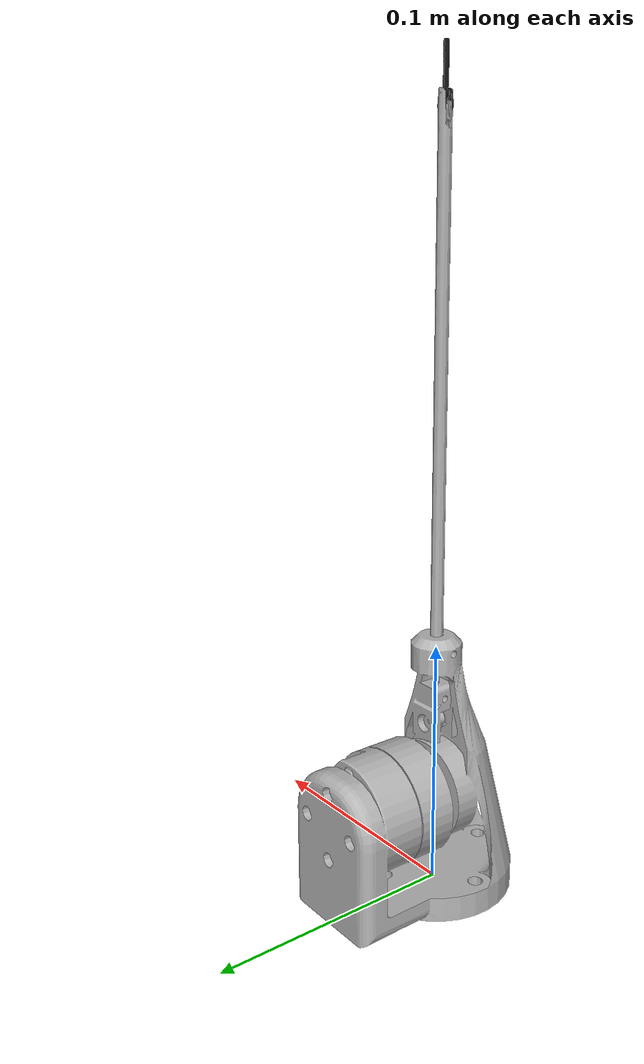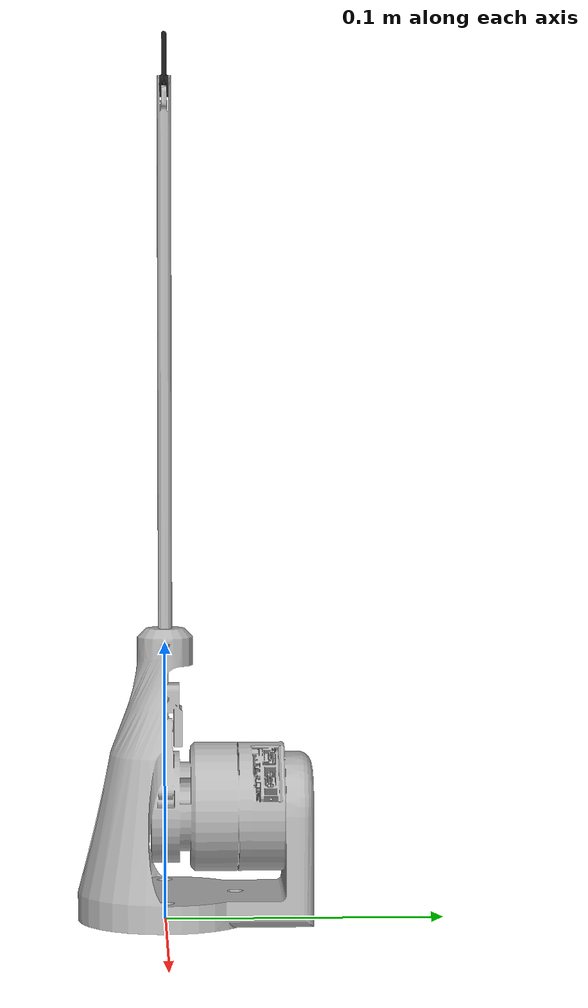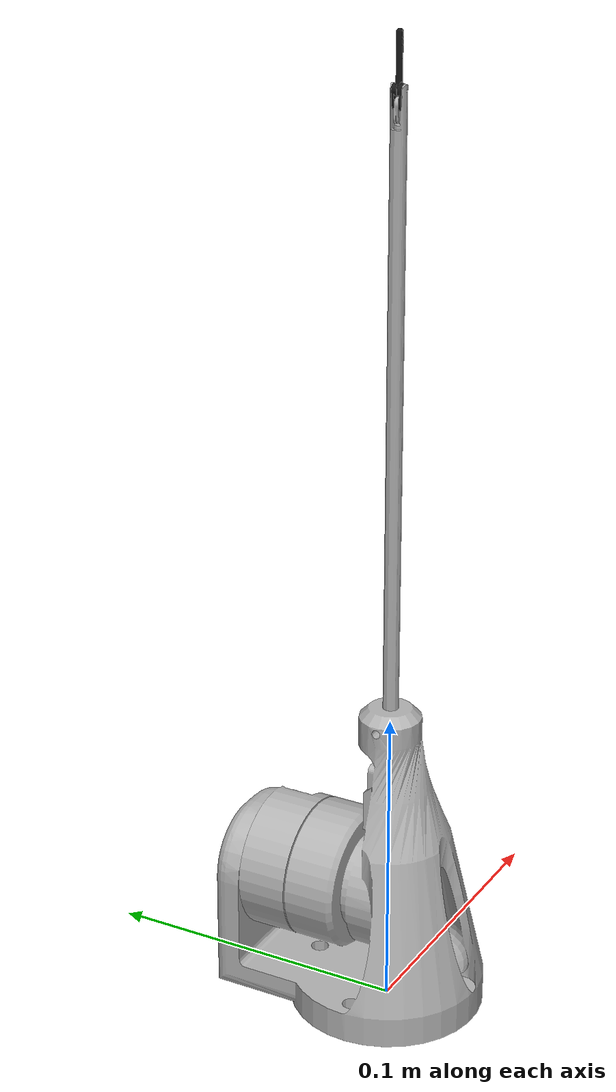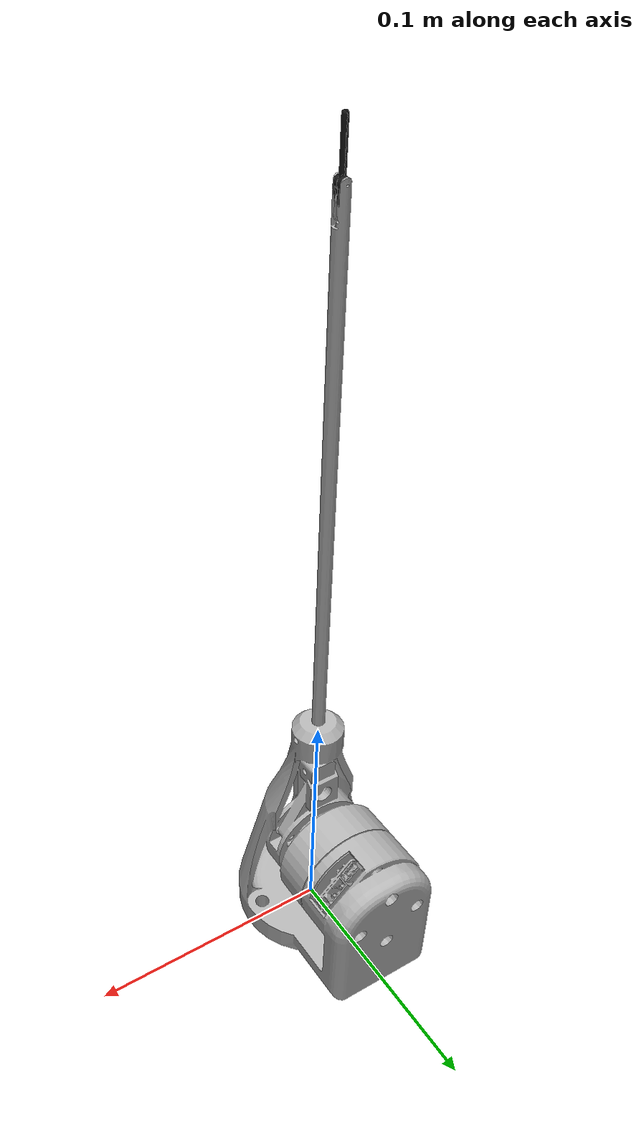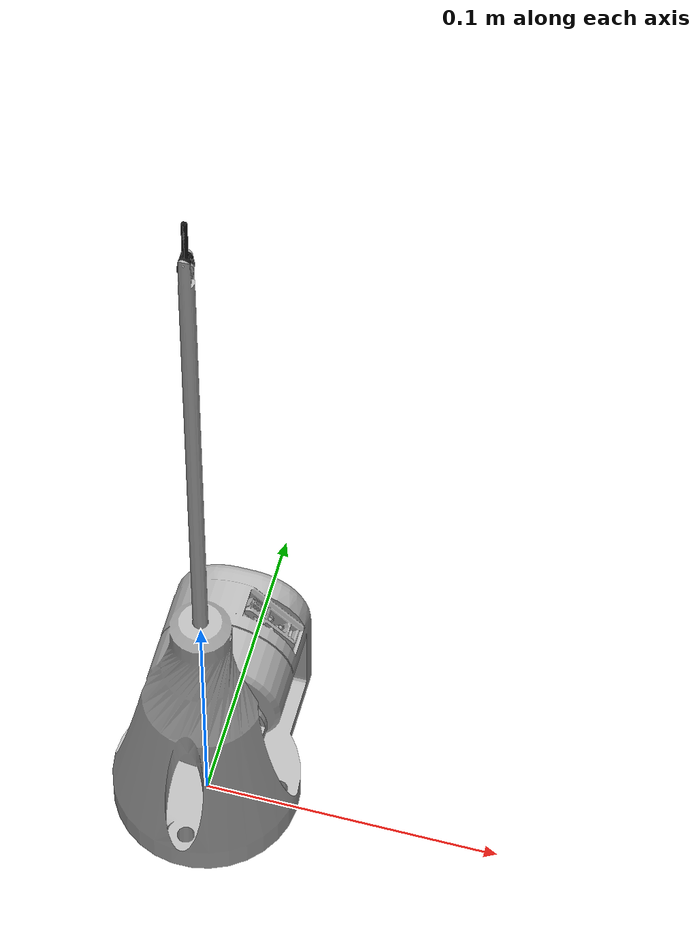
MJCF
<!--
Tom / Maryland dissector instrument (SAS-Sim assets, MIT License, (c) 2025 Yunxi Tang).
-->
<mujoco model="tom_dissector">
  <compiler angle="radian" meshdir="meshes" autolimits="true"/>

  <asset>
    <material name="td_metal" rgba="0.70 0.70 0.70 1" specular="0.6" shininess="0.5"/>
    <material name="td_rubber" rgba="0.10 0.10 0.10 1" specular="0.2" shininess="0.1"/>
    <mesh name="td_base_mesh" file="base_link.STL"/>
    <mesh name="td_jaw_a_mesh" file="gripper_link.STL"/>
    <mesh name="td_jaw_b_mesh" file="mimic_Link.STL"/>
  </asset>

  <worldbody>
    <body name="instrument_base">
      <!-- base_link: flange adapter + housing + shaft, 0 <= z <= 0.302 m -->
      <inertial pos="-0.000108988 0.015063735 0.034737922" mass="0.12619710"
        fullinertia="0.000126380 0.000091439 0.000077150 -0.000000011 0.000000278 0.000001208"/>

      <geom name="td_housing_visual" type="mesh" mesh="td_base_mesh" material="td_metal"
        contype="0" conaffinity="0" group="2"/>
      <geom name="td_housing_collision" type="cylinder" size="0.050 0.035" pos="0 0 0.035"
        group="3" rgba="0.70 0.70 0.70 0.3"/>
      <!-- thin shaft: 5 mm diameter tube running from the housing to the jaw pivot -->
      <geom name="td_shaft_collision" type="capsule" fromto="0 0 0.080 0 0 0.295" size="0.0035"
        group="3" rgba="0.70 0.70 0.70 0.3"/>

      <site name="instrument_base" pos="0 0 0" size="0.002" rgba="0.2 0.2 1 0.5" group="4"/>
      <site name="instrument_tip" pos="0 0 0.30" size="0.002" rgba="1 0.2 0.2 0.5" group="4"/>
      <site name="instrument_shaft_mid" pos="0 0 0.19" size="0.0015" group="4"/>

      <!-- jaw_a: URDF gripper_link, hinge about +y at the jaw pivot -->
      <body name="jaw_a" pos="0 0 0.30">
        <inertial pos="0.0000786 -0.0005493 0.0037380" mass="0.05136887"
          diaginertia="0.0000005 0.0000005 0.0000005"/>
        <joint name="jaw_a_joint" type="hinge" axis="0 1 0" range="0 0.5"
          armature="0.00001" damping="0.002" frictionloss="0.001"/>
        <geom name="td_jaw_a_visual" type="mesh" mesh="td_jaw_a_mesh" material="td_rubber"
          contype="0" conaffinity="0" group="2"/>
        <geom name="td_jaw_a_collision" type="mesh" mesh="td_jaw_a_mesh" group="3"/>
        <site name="jaw_a_tip" pos="0 0 0.023" size="0.001" group="4"/>
      </body>

      <!-- jaw_b: URDF mimic_Link, mirrored motion enforced by the equality constraint below -->
      <body name="jaw_b" pos="0 0 0.30">
        <inertial pos="-0.0000784 0.0005498 0.0037380" mass="0.05136882"
          diaginertia="0.0000005 0.0000005 0.0000005"/>
        <joint name="jaw_b_joint" type="hinge" axis="0 1 0" range="-0.5 0"
          armature="0.00001" damping="0.002" frictionloss="0.001"/>
        <geom name="td_jaw_b_visual" type="mesh" mesh="td_jaw_b_mesh" material="td_rubber"
          contype="0" conaffinity="0" group="2"/>
        <geom name="td_jaw_b_collision" type="mesh" mesh="td_jaw_b_mesh" group="3"/>
        <site name="jaw_b_tip" pos="0 0 0.023" size="0.001" group="4"/>
      </body>
    </body>
  </worldbody>

  <actuator>
    <position name="jaw_a" joint="jaw_a_joint" kp="0.5" kv="0.01" ctrlrange="0 0.5"/>
  </actuator>

  <equality>
    <!-- jaw_b_joint = -jaw_a_joint  (URDF mimic joint, multiplier -1) -->
    <joint name="jaw_mimic" joint1="jaw_a_joint" joint2="jaw_b_joint" polycoef="0 -1 0 0 0" solref="0.005 1"/>
  </equality>
</mujoco>
